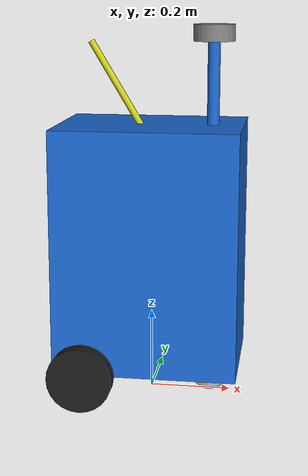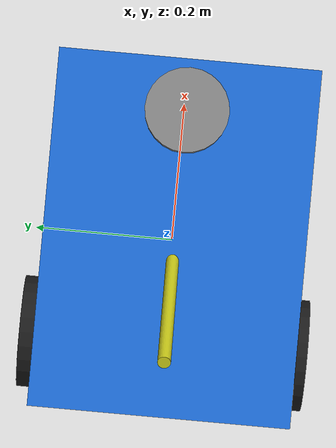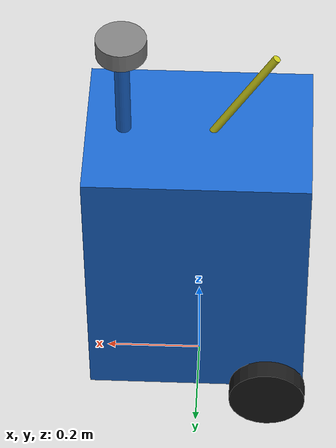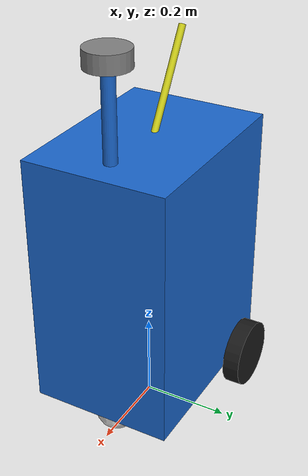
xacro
<?xml version="1.0"?>
<robot xmlns:xacro="http://www.ros.org/wiki/xacro" name="smart_trolley">

  <!-- Define materials for visualization -->
  <material name="blue">
    <color rgba="0.1 0.4 0.8 1.0"/>
  </material>

  <material name="black">
    <color rgba="0.1 0.1 0.1 1.0"/>
  </material>

  <material name="grey">
    <color rgba="0.5 0.5 0.5 1.0"/>
  </material>

  <material name="white">
    <color rgba="0.9 0.9 0.9 1.0"/>
  </material>

  <material name="yellow">
    <color rgba="0.8 0.8 0.1 1.0"/>
  </material>

  <!-- base_footprint (projection of base_link on the ground) -->
  <link name="base_footprint"/>

  <!-- base_link (chassis center at the bottom of the base box) -->
  <link name="base_link">
    <visual>
      <origin xyz="0 0 0.30" rpy="0 0 0"/>
      <geometry>
        <box size="0.45 0.33 0.60"/>
      </geometry>
      <material name="blue"/>
    </visual>
    <collision>
      <origin xyz="0 0 0.30" rpy="0 0 0"/>
      <geometry>
        <box size="0.45 0.33 0.60"/>
      </geometry>
    </collision>
    <inertial>
      <mass value="15.0"/>
      <origin xyz="0 0 0.30" rpy="0 0 0"/>
      <inertia ixx="0.58" ixy="0.0" ixz="0.0" iyy="0.70" iyz="0.0" izz="0.38"/>
    </inertial>
  </link>

  <joint name="base_footprint_joint" type="fixed">
    <parent link="base_footprint"/>
    <child link="base_link"/>
    <origin xyz="0 0 0.08" rpy="0 0 0"/> <!-- base_footprint is on the ground, base_link is offset by wheel radius (8cm) -->
  </joint>

  <!-- Rear Left Drive Wheel -->
  <link name="left_wheel">
    <visual>
      <origin xyz="0 0 0" rpy="1.5708 0 0"/>
      <geometry>
        <cylinder radius="0.08" length="0.04"/>
      </geometry>
      <material name="black"/>
    </visual>
    <collision>
      <origin xyz="0 0 0" rpy="1.5708 0 0"/>
      <geometry>
        <cylinder radius="0.08" length="0.04"/>
      </geometry>
    </collision>
  </link>

  <joint name="left_wheel_joint" type="continuous">
    <parent link="base_link"/>
    <child link="left_wheel"/>
    <origin xyz="-0.15 0.185 0.0" rpy="0 0 0"/>
    <axis xyz="0 1 0"/>
  </joint>

  <!-- Rear Right Drive Wheel -->
  <link name="right_wheel">
    <visual>
      <origin xyz="0 0 0" rpy="1.5708 0 0"/>
      <geometry>
        <cylinder radius="0.08" length="0.04"/>
      </geometry>
      <material name="black"/>
    </visual>
    <collision>
      <origin xyz="0 0 0" rpy="1.5708 0 0"/>
      <geometry>
        <cylinder radius="0.08" length="0.04"/>
      </geometry>
    </collision>
  </link>

  <joint name="right_wheel_joint" type="continuous">
    <parent link="base_link"/>
    <child link="right_wheel"/>
    <origin xyz="-0.15 -0.185 0.0" rpy="0 0 0"/>
    <axis xyz="0 1 0"/>
  </joint>

  <!-- Front Caster Wheel (Sphere support) -->
  <link name="caster_wheel">
    <visual>
      <origin xyz="0 0 0" rpy="0 0 0"/>
      <geometry>
        <sphere radius="0.05"/>
      </geometry>
      <material name="white"/>
    </visual>
    <collision>
      <origin xyz="0 0 0" rpy="0 0 0"/>
      <geometry>
        <sphere radius="0.05"/>
      </geometry>
    </collision>
  </link>

  <joint name="caster_wheel_joint" type="fixed">
    <parent link="base_link"/>
    <child link="caster_wheel"/>
    <!-- Positioned front-middle. Bottom of caster touches ground (z = -0.03 relative to base_link) -->
    <origin xyz="0.15 0.0 -0.03" rpy="0 0 0"/>
  </joint>

  <!-- Lidar Vertical Mast (Blue Column) -->
  <link name="lidar_mast">
    <visual>
      <origin xyz="0 0 0" rpy="0 0 0"/>
      <geometry>
        <cylinder radius="0.015" length="0.20"/>
      </geometry>
      <material name="blue"/>
    </visual>
    <collision>
      <origin xyz="0 0 0" rpy="0 0 0"/>
      <geometry>
        <cylinder radius="0.015" length="0.20"/>
      </geometry>
    </collision>
  </link>

  <joint name="lidar_mast_joint" type="fixed">
    <parent link="base_link"/>
    <child link="lidar_mast"/>
    <!-- Mounted on front-middle of top plate (x = 0.15, z = 0.70 extending up) -->
    <origin xyz="0.15 0.0 0.70" rpy="0 0 0"/>
  </joint>

  <!-- Diagonal Support Brace (Yellow Rod) -->
  <link name="support_brace">
    <visual>
      <origin xyz="0 0 0" rpy="0 0 0"/>
      <geometry>
        <cylinder radius="0.008" length="0.58"/>
      </geometry>
      <material name="yellow"/>
    </visual>
  </link>

  <joint name="support_brace_joint" type="fixed">
    <parent link="base_link"/>
    <child link="support_brace"/>
    <!-- Angled bracing rod connecting top of mast to back of chassis box -->
    <origin xyz="0.0 0.0 0.55" rpy="0 -0.54 0"/>
  </joint>

  <!-- Lidar Sensor Placement -->
  <!-- YDLidar X2 is mounted at the top of the mast -->
  <link name="laser_frame">
    <visual>
      <origin xyz="0 0 0" rpy="0 0 0"/>
      <geometry>
        <cylinder radius="0.05" length="0.04"/>
      </geometry>
      <material name="grey"/>
    </visual>
    <collision>
      <origin xyz="0 0 0" rpy="0 0 0"/>
      <geometry>
        <cylinder radius="0.05" length="0.04"/>
      </geometry>
    </collision>
  </link>

  <joint name="laser_joint" type="fixed">
    <parent link="lidar_mast"/>
    <child link="laser_frame"/>
    <!-- Mounted directly on top of the 20cm mast (offset z = 0.12 relative to mast center) -->
    <origin xyz="0.0 0.0 0.12" rpy="0 0 0"/>
  </joint>

</robot>
